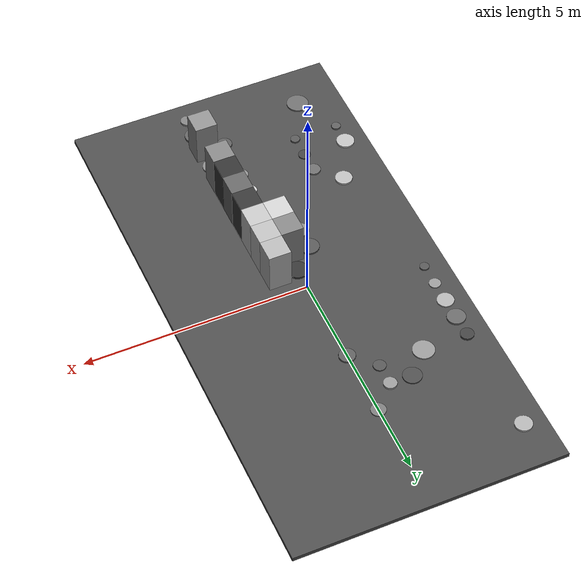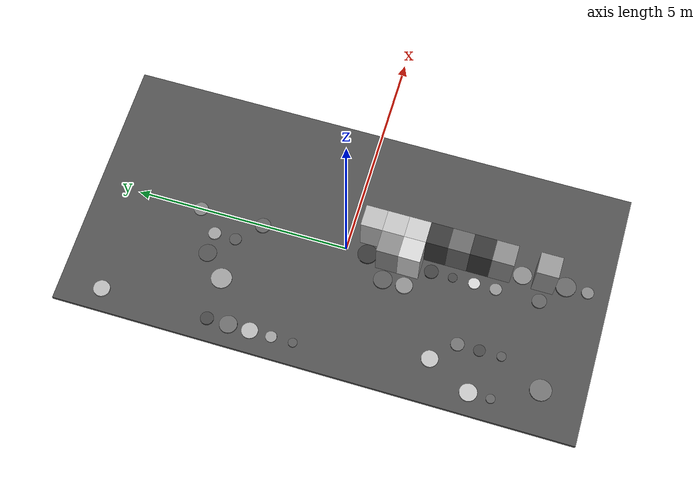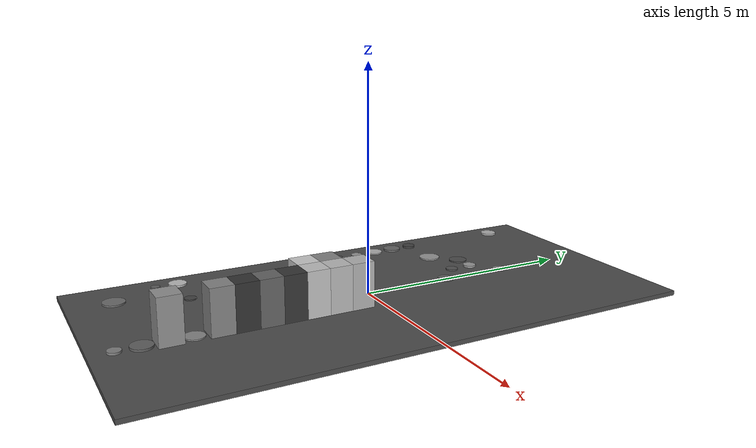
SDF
<sdf version="1.7">
 <world name="default">
  <model name="ground_plane">
   <static>true</static>
   <link name="link">
    <pose>0.0 0.0 -0.05 0 0 0</pose>
    <visual name="visual">
     <material>
      <ambient>0.297790706906946 0.297790706906946 0.297790706906946 1</ambient>
      <diffuse>0.297790706906946 0.297790706906946 0.297790706906946 1</diffuse>
     </material>
     <geometry><box><size>6.0 12.0 0.1</size></box></geometry>
    </visual>
    <collision name="collision">
     <geometry><box><size>6.0 12.0 0.1</size></box></geometry>
     <surface>
      <friction><ode><mu>100</mu><mu2>50.0</mu2><slip1>0.0</slip1><slip2>0.0</slip2></ode></friction>
      <contact><ode><kp>10000.0</kp><kd>100.0</kd></ode></contact>
     </surface>
    </collision>
   </link>
  </model>
  <model name="pn_pillar_0">
   <static>true</static>
   <link name="link">
    <pose>-2.5 -4.0 0.020492834980723545 0 0 0</pose>
    <visual name="visual">
     <material>
      <ambient>0.3650175910214716 0.3650175910214716 0.3650175910214716 1</ambient>
      <diffuse>0.3650175910214716 0.3650175910214716 0.3650175910214716 1</diffuse>
     </material>
     <geometry>
      <cylinder><radius>0.10375161328340005</radius><length>0.04098566996144709</length></cylinder>
     </geometry>
    </visual>
    <collision name="collision">
     <geometry>
      <cylinder><radius>0.10375161328340005</radius><length>0.04098566996144709</length></cylinder>
     </geometry>
     <surface>
      <friction><ode><mu>100</mu><mu2>50.0</mu2><slip1>0.0</slip1><slip2>0.0</slip2></ode></friction>
      <contact><ode><kp>10000.0</kp><kd>100.0</kd></ode></contact>
     </surface>
    </collision>
   </link>
  </model>
  <model name="pn_pillar_1">
   <static>true</static>
   <link name="link">
    <pose>-2.5 -3.5 0.021705890177050158 0 0 0</pose>
    <visual name="visual">
     <material>
      <ambient>0.7353077406229074 0.7353077406229074 0.7353077406229074 1</ambient>
      <diffuse>0.7353077406229074 0.7353077406229074 0.7353077406229074 1</diffuse>
     </material>
     <geometry>
      <cylinder><radius>0.2015049231134367</radius><length>0.043411780354100316</length></cylinder>
     </geometry>
    </visual>
    <collision name="collision">
     <geometry>
      <cylinder><radius>0.2015049231134367</radius><length>0.043411780354100316</length></cylinder>
     </geometry>
     <surface>
      <friction><ode><mu>100</mu><mu2>50.0</mu2><slip1>0.0</slip1><slip2>0.0</slip2></ode></friction>
      <contact><ode><kp>10000.0</kp><kd>100.0</kd></ode></contact>
     </surface>
    </collision>
   </link>
  </model>
  <model name="pn_pillar_2">
   <static>true</static>
   <link name="link">
    <pose>-2.5 0.5 0.017774022746065883 0 0 0</pose>
    <visual name="visual">
     <material>
      <ambient>0.331182784882162 0.331182784882162 0.331182784882162 1</ambient>
      <diffuse>0.331182784882162 0.331182784882162 0.331182784882162 1</diffuse>
     </material>
     <geometry>
      <cylinder><radius>0.10446958291571055</radius><length>0.035548045492131766</length></cylinder>
     </geometry>
    </visual>
    <collision name="collision">
     <geometry>
      <cylinder><radius>0.10446958291571055</radius><length>0.035548045492131766</length></cylinder>
     </geometry>
     <surface>
      <friction><ode><mu>100</mu><mu2>50.0</mu2><slip1>0.0</slip1><slip2>0.0</slip2></ode></friction>
      <contact><ode><kp>10000.0</kp><kd>100.0</kd></ode></contact>
     </surface>
    </collision>
   </link>
  </model>
  <model name="pn_pillar_3">
   <static>true</static>
   <link name="link">
    <pose>-2.5 1.0 0.012831699621048296 0 0 0</pose>
    <visual name="visual">
     <material>
      <ambient>0.589930662667714 0.589930662667714 0.589930662667714 1</ambient>
      <diffuse>0.589930662667714 0.589930662667714 0.589930662667714 1</diffuse>
     </material>
     <geometry>
      <cylinder><radius>0.12982564760299728</radius><length>0.025663399242096593</length></cylinder>
     </geometry>
    </visual>
    <collision name="collision">
     <geometry>
      <cylinder><radius>0.12982564760299728</radius><length>0.025663399242096593</length></cylinder>
     </geometry>
     <surface>
      <friction><ode><mu>100</mu><mu2>50.0</mu2><slip1>0.0</slip1><slip2>0.0</slip2></ode></friction>
      <contact><ode><kp>10000.0</kp><kd>100.0</kd></ode></contact>
     </surface>
    </collision>
   </link>
  </model>
  <model name="pn_pillar_4">
   <static>true</static>
   <link name="link">
    <pose>-2.5 1.5 0.015255507775508709 0 0 0</pose>
    <visual name="visual">
     <material>
      <ambient>0.6856582740066961 0.6856582740066961 0.6856582740066961 1</ambient>
      <diffuse>0.6856582740066961 0.6856582740066961 0.6856582740066961 1</diffuse>
     </material>
     <geometry>
      <cylinder><radius>0.1883898525813863</radius><length>0.030511015551017418</length></cylinder>
     </geometry>
    </visual>
    <collision name="collision">
     <geometry>
      <cylinder><radius>0.1883898525813863</radius><length>0.030511015551017418</length></cylinder>
     </geometry>
     <surface>
      <friction><ode><mu>100</mu><mu2>50.0</mu2><slip1>0.0</slip1><slip2>0.0</slip2></ode></friction>
      <contact><ode><kp>10000.0</kp><kd>100.0</kd></ode></contact>
     </surface>
    </collision>
   </link>
  </model>
  <model name="pn_pillar_5">
   <static>true</static>
   <link name="link">
    <pose>-2.5 2.0 0.0225727406479101 0 0 0</pose>
    <visual name="visual">
     <material>
      <ambient>0.40415030991079515 0.40415030991079515 0.40415030991079515 1</ambient>
      <diffuse>0.40415030991079515 0.40415030991079515 0.40415030991079515 1</diffuse>
     </material>
     <geometry>
      <cylinder><radius>0.20472090924823405</radius><length>0.0451454812958202</length></cylinder>
     </geometry>
    </visual>
    <collision name="collision">
     <geometry>
      <cylinder><radius>0.20472090924823405</radius><length>0.0451454812958202</length></cylinder>
     </geometry>
     <surface>
      <friction><ode><mu>100</mu><mu2>50.0</mu2><slip1>0.0</slip1><slip2>0.0</slip2></ode></friction>
      <contact><ode><kp>10000.0</kp><kd>100.0</kd></ode></contact>
     </surface>
    </collision>
   </link>
  </model>
  <model name="pn_pillar_6">
   <static>true</static>
   <link name="link">
    <pose>-2.5 2.5 0.024465163402584766 0 0 0</pose>
    <visual name="visual">
     <material>
      <ambient>0.2556475060280888 0.2556475060280888 0.2556475060280888 1</ambient>
      <diffuse>0.2556475060280888 0.2556475060280888 0.2556475060280888 1</diffuse>
     </material>
     <geometry>
      <cylinder><radius>0.15048918176689402</radius><length>0.04893032680516953</length></cylinder>
     </geometry>
    </visual>
    <collision name="collision">
     <geometry>
      <cylinder><radius>0.15048918176689402</radius><length>0.04893032680516953</length></cylinder>
     </geometry>
     <surface>
      <friction><ode><mu>100</mu><mu2>50.0</mu2><slip1>0.0</slip1><slip2>0.0</slip2></ode></friction>
      <contact><ode><kp>10000.0</kp><kd>100.0</kd></ode></contact>
     </surface>
    </collision>
   </link>
  </model>
  <model name="pn_pillar_7">
   <static>true</static>
   <link name="link">
    <pose>-2.5 5.0 0.02309367957934325 0 0 0</pose>
    <visual name="visual">
     <material>
      <ambient>0.6842769639646282 0.6842769639646282 0.6842769639646282 1</ambient>
      <diffuse>0.6842769639646282 0.6842769639646282 0.6842769639646282 1</diffuse>
     </material>
     <geometry>
      <cylinder><radius>0.19055890470503367</radius><length>0.0461873591586865</length></cylinder>
     </geometry>
    </visual>
    <collision name="collision">
     <geometry>
      <cylinder><radius>0.19055890470503367</radius><length>0.0461873591586865</length></cylinder>
     </geometry>
     <surface>
      <friction><ode><mu>100</mu><mu2>50.0</mu2><slip1>0.0</slip1><slip2>0.0</slip2></ode></friction>
      <contact><ode><kp>10000.0</kp><kd>100.0</kd></ode></contact>
     </surface>
    </collision>
   </link>
  </model>
  <model name="pn_pillar_8">
   <static>true</static>
   <link name="link">
    <pose>-2.0 -5.0 0.01920285114318376 0 0 0</pose>
    <visual name="visual">
     <material>
      <ambient>0.42712062632501213 0.42712062632501213 0.42712062632501213 1</ambient>
      <diffuse>0.42712062632501213 0.42712062632501213 0.42712062632501213 1</diffuse>
     </material>
     <geometry>
      <cylinder><radius>0.2459673645969056</radius><length>0.03840570228636752</length></cylinder>
     </geometry>
    </visual>
    <collision name="collision">
     <geometry>
      <cylinder><radius>0.2459673645969056</radius><length>0.03840570228636752</length></cylinder>
     </geometry>
     <surface>
      <friction><ode><mu>100</mu><mu2>50.0</mu2><slip1>0.0</slip1><slip2>0.0</slip2></ode></friction>
      <contact><ode><kp>10000.0</kp><kd>100.0</kd></ode></contact>
     </surface>
    </collision>
   </link>
  </model>
  <model name="pn_pillar_9">
   <static>true</static>
   <link name="link">
    <pose>-2.0 -2.5 0.022867558303162436 0 0 0</pose>
    <visual name="visual">
     <material>
      <ambient>0.7170241401864663 0.7170241401864663 0.7170241401864663 1</ambient>
      <diffuse>0.7170241401864663 0.7170241401864663 0.7170241401864663 1</diffuse>
     </material>
     <geometry>
      <cylinder><radius>0.19277796285463691</radius><length>0.04573511660632487</length></cylinder>
     </geometry>
    </visual>
    <collision name="collision">
     <geometry>
      <cylinder><radius>0.19277796285463691</radius><length>0.04573511660632487</length></cylinder>
     </geometry>
     <surface>
      <friction><ode><mu>100</mu><mu2>50.0</mu2><slip1>0.0</slip1><slip2>0.0</slip2></ode></friction>
      <contact><ode><kp>10000.0</kp><kd>100.0</kd></ode></contact>
     </surface>
    </collision>
   </link>
  </model>
  <model name="pn_pillar_10">
   <static>true</static>
   <link name="link">
    <pose>-1.5 -4.0 0.021307147952686546 0 0 0</pose>
    <visual name="visual">
     <material>
      <ambient>0.3367389653909282 0.3367389653909282 0.3367389653909282 1</ambient>
      <diffuse>0.3367389653909282 0.3367389653909282 0.3367389653909282 1</diffuse>
     </material>
     <geometry>
      <cylinder><radius>0.10687365754834934</radius><length>0.04261429590537309</length></cylinder>
     </geometry>
    </visual>
    <collision name="collision">
     <geometry>
      <cylinder><radius>0.10687365754834934</radius><length>0.04261429590537309</length></cylinder>
     </geometry>
     <surface>
      <friction><ode><mu>100</mu><mu2>50.0</mu2><slip1>0.0</slip1><slip2>0.0</slip2></ode></friction>
      <contact><ode><kp>10000.0</kp><kd>100.0</kd></ode></contact>
     </surface>
    </collision>
   </link>
  </model>
  <model name="pn_pillar_11">
   <static>true</static>
   <link name="link">
    <pose>-1.5 -3.5 0.013497399711545344 0 0 0</pose>
    <visual name="visual">
     <material>
      <ambient>0.2606008576458375 0.2606008576458375 0.2606008576458375 1</ambient>
      <diffuse>0.2606008576458375 0.2606008576458375 0.2606008576458375 1</diffuse>
     </material>
     <geometry>
      <cylinder><radius>0.13491863295415452</radius><length>0.026994799423090687</length></cylinder>
     </geometry>
    </visual>
    <collision name="collision">
     <geometry>
      <cylinder><radius>0.13491863295415452</radius><length>0.026994799423090687</length></cylinder>
     </geometry>
     <surface>
      <friction><ode><mu>100</mu><mu2>50.0</mu2><slip1>0.0</slip1><slip2>0.0</slip2></ode></friction>
      <contact><ode><kp>10000.0</kp><kd>100.0</kd></ode></contact>
     </surface>
    </collision>
   </link>
  </model>
  <model name="pn_pillar_12">
   <static>true</static>
   <link name="link">
    <pose>-1.5 -3.0 0.020446055553305004 0 0 0</pose>
    <visual name="visual">
     <material>
      <ambient>0.42210858027012965 0.42210858027012965 0.42210858027012965 1</ambient>
      <diffuse>0.42210858027012965 0.42210858027012965 0.42210858027012965 1</diffuse>
     </material>
     <geometry>
      <cylinder><radius>0.15472482684551264</radius><length>0.04089211110661001</length></cylinder>
     </geometry>
    </visual>
    <collision name="collision">
     <geometry>
      <cylinder><radius>0.15472482684551264</radius><length>0.04089211110661001</length></cylinder>
     </geometry>
     <surface>
      <friction><ode><mu>100</mu><mu2>50.0</mu2><slip1>0.0</slip1><slip2>0.0</slip2></ode></friction>
      <contact><ode><kp>10000.0</kp><kd>100.0</kd></ode></contact>
     </surface>
    </collision>
   </link>
  </model>
  <model name="pn_pillar_13">
   <static>true</static>
   <link name="link">
    <pose>-1.5 2.5 0.01583722277561392 0 0 0</pose>
    <visual name="visual">
     <material>
      <ambient>0.5888212311479561 0.5888212311479561 0.5888212311479561 1</ambient>
      <diffuse>0.5888212311479561 0.5888212311479561 0.5888212311479561 1</diffuse>
     </material>
     <geometry>
      <cylinder><radius>0.2404981881568741</radius><length>0.03167444555122784</length></cylinder>
     </geometry>
    </visual>
    <collision name="collision">
     <geometry>
      <cylinder><radius>0.2404981881568741</radius><length>0.03167444555122784</length></cylinder>
     </geometry>
     <surface>
      <friction><ode><mu>100</mu><mu2>50.0</mu2><slip1>0.0</slip1><slip2>0.0</slip2></ode></friction>
      <contact><ode><kp>10000.0</kp><kd>100.0</kd></ode></contact>
     </surface>
    </collision>
   </link>
  </model>
  <model name="pn_pillar_14">
   <static>true</static>
   <link name="link">
    <pose>-1.0 3.0 0.014639233102476213 0 0 0</pose>
    <visual name="visual">
     <material>
      <ambient>0.29804149625715703 0.29804149625715703 0.29804149625715703 1</ambient>
      <diffuse>0.29804149625715703 0.29804149625715703 0.29804149625715703 1</diffuse>
     </material>
     <geometry>
      <cylinder><radius>0.2093690196925524</radius><length>0.029278466204952426</length></cylinder>
     </geometry>
    </visual>
    <collision name="collision">
     <geometry>
      <cylinder><radius>0.2093690196925524</radius><length>0.029278466204952426</length></cylinder>
     </geometry>
     <surface>
      <friction><ode><mu>100</mu><mu2>50.0</mu2><slip1>0.0</slip1><slip2>0.0</slip2></ode></friction>
      <contact><ode><kp>10000.0</kp><kd>100.0</kd></ode></contact>
     </surface>
    </collision>
   </link>
  </model>
  <model name="pn_pillar_15">
   <static>true</static>
   <link name="link">
    <pose>-0.5 -1.5 0.02486904188295744 0 0 0</pose>
    <visual name="visual">
     <material>
      <ambient>0.5341698462647878 0.5341698462647878 0.5341698462647878 1</ambient>
      <diffuse>0.5341698462647878 0.5341698462647878 0.5341698462647878 1</diffuse>
     </material>
     <geometry>
      <cylinder><radius>0.19599996397811392</radius><length>0.04973808376591488</length></cylinder>
     </geometry>
    </visual>
    <collision name="collision">
     <geometry>
      <cylinder><radius>0.19599996397811392</radius><length>0.04973808376591488</length></cylinder>
     </geometry>
     <surface>
      <friction><ode><mu>100</mu><mu2>50.0</mu2><slip1>0.0</slip1><slip2>0.0</slip2></ode></friction>
      <contact><ode><kp>10000.0</kp><kd>100.0</kd></ode></contact>
     </surface>
    </collision>
   </link>
  </model>
  <model name="pn_pillar_16">
   <static>true</static>
   <link name="link">
    <pose>-0.5 -1.0 0.02303564900237262 0 0 0</pose>
    <visual name="visual">
     <material>
      <ambient>0.33742884317846267 0.33742884317846267 0.33742884317846267 1</ambient>
      <diffuse>0.33742884317846267 0.33742884317846267 0.33742884317846267 1</diffuse>
     </material>
     <geometry>
      <cylinder><radius>0.21639998673193672</radius><length>0.04607129800474524</length></cylinder>
     </geometry>
    </visual>
    <collision name="collision">
     <geometry>
      <cylinder><radius>0.21639998673193672</radius><length>0.04607129800474524</length></cylinder>
     </geometry>
     <surface>
      <friction><ode><mu>100</mu><mu2>50.0</mu2><slip1>0.0</slip1><slip2>0.0</slip2></ode></friction>
      <contact><ode><kp>10000.0</kp><kd>100.0</kd></ode></contact>
     </surface>
    </collision>
   </link>
  </model>
  <model name="pn_pillar_17">
   <static>true</static>
   <link name="link">
    <pose>-0.5 2.5 0.016443163100738525 0 0 0</pose>
    <visual name="visual">
     <material>
      <ambient>0.32658970615179594 0.32658970615179594 0.32658970615179594 1</ambient>
      <diffuse>0.32658970615179594 0.32658970615179594 0.32658970615179594 1</diffuse>
     </material>
     <geometry>
      <cylinder><radius>0.14016113139635542</radius><length>0.03288632620147705</length></cylinder>
     </geometry>
    </visual>
    <collision name="collision">
     <geometry>
      <cylinder><radius>0.14016113139635542</radius><length>0.03288632620147705</length></cylinder>
     </geometry>
     <surface>
      <friction><ode><mu>100</mu><mu2>50.0</mu2><slip1>0.0</slip1><slip2>0.0</slip2></ode></friction>
      <contact><ode><kp>10000.0</kp><kd>100.0</kd></ode></contact>
     </surface>
    </collision>
   </link>
  </model>
  <model name="pn_pillar_18">
   <static>true</static>
   <link name="link">
    <pose>-0.5 3.0 0.02345459533090836 0 0 0</pose>
    <visual name="visual">
     <material>
      <ambient>0.5932631991769282 0.5932631991769282 0.5932631991769282 1</ambient>
      <diffuse>0.5932631991769282 0.5932631991769282 0.5932631991769282 1</diffuse>
     </material>
     <geometry>
      <cylinder><radius>0.1472016821197717</radius><length>0.04690919066181672</length></cylinder>
     </geometry>
    </visual>
    <collision name="collision">
     <geometry>
      <cylinder><radius>0.1472016821197717</radius><length>0.04690919066181672</length></cylinder>
     </geometry>
     <surface>
      <friction><ode><mu>100</mu><mu2>50.0</mu2><slip1>0.0</slip1><slip2>0.0</slip2></ode></friction>
      <contact><ode><kp>10000.0</kp><kd>100.0</kd></ode></contact>
     </surface>
    </collision>
   </link>
  </model>
  <model name="pn_pillar_19">
   <static>true</static>
   <link name="link">
    <pose>0.0 -4.5 0.023931844871756796 0 0 0</pose>
    <visual name="visual">
     <material>
      <ambient>0.3589280998988315 0.3589280998988315 0.3589280998988315 1</ambient>
      <diffuse>0.3589280998988315 0.3589280998988315 0.3589280998988315 1</diffuse>
     </material>
     <geometry>
      <cylinder><radius>0.16882777788810982</radius><length>0.04786368974351359</length></cylinder>
     </geometry>
    </visual>
    <collision name="collision">
     <geometry>
      <cylinder><radius>0.16882777788810982</radius><length>0.04786368974351359</length></cylinder>
     </geometry>
     <surface>
      <friction><ode><mu>100</mu><mu2>50.0</mu2><slip1>0.0</slip1><slip2>0.0</slip2></ode></friction>
      <contact><ode><kp>10000.0</kp><kd>100.0</kd></ode></contact>
     </surface>
    </collision>
   </link>
  </model>
  <model name="pn_pillar_20">
   <static>true</static>
   <link name="link">
    <pose>0.0 -3.5 0.019517101677039385 0 0 0</pose>
    <visual name="visual">
     <material>
      <ambient>0.5507515941341243 0.5507515941341243 0.5507515941341243 1</ambient>
      <diffuse>0.5507515941341243 0.5507515941341243 0.5507515941341243 1</diffuse>
     </material>
     <geometry>
      <cylinder><radius>0.1394112412784403</radius><length>0.03903420335407877</length></cylinder>
     </geometry>
    </visual>
    <collision name="collision">
     <geometry>
      <cylinder><radius>0.1394112412784403</radius><length>0.03903420335407877</length></cylinder>
     </geometry>
     <surface>
      <friction><ode><mu>100</mu><mu2>50.0</mu2><slip1>0.0</slip1><slip2>0.0</slip2></ode></friction>
      <contact><ode><kp>10000.0</kp><kd>100.0</kd></ode></contact>
     </surface>
    </collision>
   </link>
  </model>
  <model name="pn_pillar_21">
   <static>true</static>
   <link name="link">
    <pose>0.0 -3.0 0.017492506314254967 0 0 0</pose>
    <visual name="visual">
     <material>
      <ambient>0.7985225638970663 0.7985225638970663 0.7985225638970663 1</ambient>
      <diffuse>0.7985225638970663 0.7985225638970663 0.7985225638970663 1</diffuse>
     </material>
     <geometry>
      <cylinder><radius>0.13289811387359252</radius><length>0.034985012628509934</length></cylinder>
     </geometry>
    </visual>
    <collision name="collision">
     <geometry>
      <cylinder><radius>0.13289811387359252</radius><length>0.034985012628509934</length></cylinder>
     </geometry>
     <surface>
      <friction><ode><mu>100</mu><mu2>50.0</mu2><slip1>0.0</slip1><slip2>0.0</slip2></ode></friction>
      <contact><ode><kp>10000.0</kp><kd>100.0</kd></ode></contact>
     </surface>
    </collision>
   </link>
  </model>
  <model name="pn_pillar_22">
   <static>true</static>
   <link name="link">
    <pose>0.0 -2.5 0.013636367652172424 0 0 0</pose>
    <visual name="visual">
     <material>
      <ambient>0.2657894782103955 0.2657894782103955 0.2657894782103955 1</ambient>
      <diffuse>0.2657894782103955 0.2657894782103955 0.2657894782103955 1</diffuse>
     </material>
     <geometry>
      <cylinder><radius>0.10706745631371019</radius><length>0.027272735304344847</length></cylinder>
     </geometry>
    </visual>
    <collision name="collision">
     <geometry>
      <cylinder><radius>0.10706745631371019</radius><length>0.027272735304344847</length></cylinder>
     </geometry>
     <surface>
      <friction><ode><mu>100</mu><mu2>50.0</mu2><slip1>0.0</slip1><slip2>0.0</slip2></ode></friction>
      <contact><ode><kp>10000.0</kp><kd>100.0</kd></ode></contact>
     </surface>
    </collision>
   </link>
  </model>
  <model name="pn_pillar_23">
   <static>true</static>
   <link name="link">
    <pose>0.0 -2.0 0.022400992054537053 0 0 0</pose>
    <visual name="visual">
     <material>
      <ambient>0.2381166236911743 0.2381166236911743 0.2381166236911743 1</ambient>
      <diffuse>0.2381166236911743 0.2381166236911743 0.2381166236911743 1</diffuse>
     </material>
     <geometry>
      <cylinder><radius>0.1633239950199526</radius><length>0.04480198410907411</length></cylinder>
     </geometry>
    </visual>
    <collision name="collision">
     <geometry>
      <cylinder><radius>0.1633239950199526</radius><length>0.04480198410907411</length></cylinder>
     </geometry>
     <surface>
      <friction><ode><mu>100</mu><mu2>50.0</mu2><slip1>0.0</slip1><slip2>0.0</slip2></ode></friction>
      <contact><ode><kp>10000.0</kp><kd>100.0</kd></ode></contact>
     </surface>
    </collision>
   </link>
  </model>
  <model name="pn_wall_24">
   <static>true</static>
   <link name="link">
    <pose>0.0 -1.5 0.5 0 0 0</pose>
    <visual name="visual">
     <material>
      <ambient>0.7976728281440582 0.7976728281440582 0.7976728281440582 1</ambient>
      <diffuse>0.7976728281440582 0.7976728281440582 0.7976728281440582 1</diffuse>
     </material>
     <geometry><box><size>0.5 0.5 1.0</size></box></geometry>
    </visual>
    <collision name="collision">
     <geometry><box><size>0.5 0.5 1.0</size></box></geometry>
     <surface>
      <friction><ode><mu>100</mu><mu2>50.0</mu2><slip1>0.0</slip1><slip2>0.0</slip2></ode></friction>
      <contact><ode><kp>10000.0</kp><kd>100.0</kd></ode></contact>
     </surface>
    </collision>
   </link>
  </model>
  <model name="pn_wall_25">
   <static>true</static>
   <link name="link">
    <pose>0.0 -1.0 0.5 0 0 0</pose>
    <visual name="visual">
     <material>
      <ambient>0.5174686070594823 0.5174686070594823 0.5174686070594823 1</ambient>
      <diffuse>0.5174686070594823 0.5174686070594823 0.5174686070594823 1</diffuse>
     </material>
     <geometry><box><size>0.5 0.5 1.0</size></box></geometry>
    </visual>
    <collision name="collision">
     <geometry><box><size>0.5 0.5 1.0</size></box></geometry>
     <surface>
      <friction><ode><mu>100</mu><mu2>50.0</mu2><slip1>0.0</slip1><slip2>0.0</slip2></ode></friction>
      <contact><ode><kp>10000.0</kp><kd>100.0</kd></ode></contact>
     </surface>
    </collision>
   </link>
  </model>
  <model name="pn_pillar_26">
   <static>true</static>
   <link name="link">
    <pose>0.0 -0.5 0.024638479720170227 0 0 0</pose>
    <visual name="visual">
     <material>
      <ambient>0.2068886131656918 0.2068886131656918 0.2068886131656918 1</ambient>
      <diffuse>0.2068886131656918 0.2068886131656918 0.2068886131656918 1</diffuse>
     </material>
     <geometry>
      <cylinder><radius>0.2291169553351747</radius><length>0.049276959440340454</length></cylinder>
     </geometry>
    </visual>
    <collision name="collision">
     <geometry>
      <cylinder><radius>0.2291169553351747</radius><length>0.049276959440340454</length></cylinder>
     </geometry>
     <surface>
      <friction><ode><mu>100</mu><mu2>50.0</mu2><slip1>0.0</slip1><slip2>0.0</slip2></ode></friction>
      <contact><ode><kp>10000.0</kp><kd>100.0</kd></ode></contact>
     </surface>
    </collision>
   </link>
  </model>
  <model name="pn_pillar_27">
   <static>true</static>
   <link name="link">
    <pose>0.0 2.0 0.021021379612832188 0 0 0</pose>
    <visual name="visual">
     <material>
      <ambient>0.3600951139715257 0.3600951139715257 0.3600951139715257 1</ambient>
      <diffuse>0.3600951139715257 0.3600951139715257 0.3600951139715257 1</diffuse>
     </material>
     <geometry>
      <cylinder><radius>0.1805455495613193</radius><length>0.042042759225664375</length></cylinder>
     </geometry>
    </visual>
    <collision name="collision">
     <geometry>
      <cylinder><radius>0.1805455495613193</radius><length>0.042042759225664375</length></cylinder>
     </geometry>
     <surface>
      <friction><ode><mu>100</mu><mu2>50.0</mu2><slip1>0.0</slip1><slip2>0.0</slip2></ode></friction>
      <contact><ode><kp>10000.0</kp><kd>100.0</kd></ode></contact>
     </surface>
    </collision>
   </link>
  </model>
  <model name="pn_pillar_28">
   <static>true</static>
   <link name="link">
    <pose>0.0 3.5 0.013894402169948456 0 0 0</pose>
    <visual name="visual">
     <material>
      <ambient>0.47223422379752394 0.47223422379752394 0.47223422379752394 1</ambient>
      <diffuse>0.47223422379752394 0.47223422379752394 0.47223422379752394 1</diffuse>
     </material>
     <geometry>
      <cylinder><radius>0.16521478760036573</radius><length>0.027788804339896913</length></cylinder>
     </geometry>
    </visual>
    <collision name="collision">
     <geometry>
      <cylinder><radius>0.16521478760036573</radius><length>0.027788804339896913</length></cylinder>
     </geometry>
     <surface>
      <friction><ode><mu>100</mu><mu2>50.0</mu2><slip1>0.0</slip1><slip2>0.0</slip2></ode></friction>
      <contact><ode><kp>10000.0</kp><kd>100.0</kd></ode></contact>
     </surface>
    </collision>
   </link>
  </model>
  <model name="pn_pillar_29">
   <static>true</static>
   <link name="link">
    <pose>0.5 -5.5 0.02344816175472743 0 0 0</pose>
    <visual name="visual">
     <material>
      <ambient>0.500351667830179 0.500351667830179 0.500351667830179 1</ambient>
      <diffuse>0.500351667830179 0.500351667830179 0.500351667830179 1</diffuse>
     </material>
     <geometry>
      <cylinder><radius>0.1395083576126636</radius><length>0.04689632350945486</length></cylinder>
     </geometry>
    </visual>
    <collision name="collision">
     <geometry>
      <cylinder><radius>0.1395083576126636</radius><length>0.04689632350945486</length></cylinder>
     </geometry>
     <surface>
      <friction><ode><mu>100</mu><mu2>50.0</mu2><slip1>0.0</slip1><slip2>0.0</slip2></ode></friction>
      <contact><ode><kp>10000.0</kp><kd>100.0</kd></ode></contact>
     </surface>
    </collision>
   </link>
  </model>
  <model name="pn_pillar_30">
   <static>true</static>
   <link name="link">
    <pose>0.5 -5.0 0.02390784799181026 0 0 0</pose>
    <visual name="visual">
     <material>
      <ambient>0.3790668748691798 0.3790668748691798 0.3790668748691798 1</ambient>
      <diffuse>0.3790668748691798 0.3790668748691798 0.3790668748691798 1</diffuse>
     </material>
     <geometry>
      <cylinder><radius>0.23057778547551502</radius><length>0.04781569598362052</length></cylinder>
     </geometry>
    </visual>
    <collision name="collision">
     <geometry>
      <cylinder><radius>0.23057778547551502</radius><length>0.04781569598362052</length></cylinder>
     </geometry>
     <surface>
      <friction><ode><mu>100</mu><mu2>50.0</mu2><slip1>0.0</slip1><slip2>0.0</slip2></ode></friction>
      <contact><ode><kp>10000.0</kp><kd>100.0</kd></ode></contact>
     </surface>
    </collision>
   </link>
  </model>
  <model name="pn_wall_31">
   <static>true</static>
   <link name="link">
    <pose>0.5 -4.5 0.5 0 0 0</pose>
    <visual name="visual">
     <material>
      <ambient>0.5653821268629035 0.5653821268629035 0.5653821268629035 1</ambient>
      <diffuse>0.5653821268629035 0.5653821268629035 0.5653821268629035 1</diffuse>
     </material>
     <geometry><box><size>0.5 0.5 1.0</size></box></geometry>
    </visual>
    <collision name="collision">
     <geometry><box><size>0.5 0.5 1.0</size></box></geometry>
     <surface>
      <friction><ode><mu>100</mu><mu2>50.0</mu2><slip1>0.0</slip1><slip2>0.0</slip2></ode></friction>
      <contact><ode><kp>10000.0</kp><kd>100.0</kd></ode></contact>
     </surface>
    </collision>
   </link>
  </model>
  <model name="pn_pillar_32">
   <static>true</static>
   <link name="link">
    <pose>0.5 -4.0 0.014410490856870435 0 0 0</pose>
    <visual name="visual">
     <material>
      <ambient>0.5236274180717755 0.5236274180717755 0.5236274180717755 1</ambient>
      <diffuse>0.5236274180717755 0.5236274180717755 0.5236274180717755 1</diffuse>
     </material>
     <geometry>
      <cylinder><radius>0.2143766200112727</radius><length>0.02882098171374087</length></cylinder>
     </geometry>
    </visual>
    <collision name="collision">
     <geometry>
      <cylinder><radius>0.2143766200112727</radius><length>0.02882098171374087</length></cylinder>
     </geometry>
     <surface>
      <friction><ode><mu>100</mu><mu2>50.0</mu2><slip1>0.0</slip1><slip2>0.0</slip2></ode></friction>
      <contact><ode><kp>10000.0</kp><kd>100.0</kd></ode></contact>
     </surface>
    </collision>
   </link>
  </model>
  <model name="pn_wall_33">
   <static>true</static>
   <link name="link">
    <pose>0.5 -3.5 0.5 0 0 0</pose>
    <visual name="visual">
     <material>
      <ambient>0.5182122033171066 0.5182122033171066 0.5182122033171066 1</ambient>
      <diffuse>0.5182122033171066 0.5182122033171066 0.5182122033171066 1</diffuse>
     </material>
     <geometry><box><size>0.5 0.5 1.0</size></box></geometry>
    </visual>
    <collision name="collision">
     <geometry><box><size>0.5 0.5 1.0</size></box></geometry>
     <surface>
      <friction><ode><mu>100</mu><mu2>50.0</mu2><slip1>0.0</slip1><slip2>0.0</slip2></ode></friction>
      <contact><ode><kp>10000.0</kp><kd>100.0</kd></ode></contact>
     </surface>
    </collision>
   </link>
  </model>
  <model name="pn_wall_34">
   <static>true</static>
   <link name="link">
    <pose>0.5 -3.0 0.5 0 0 0</pose>
    <visual name="visual">
     <material>
      <ambient>0.20034313767676612 0.20034313767676612 0.20034313767676612 1</ambient>
      <diffuse>0.20034313767676612 0.20034313767676612 0.20034313767676612 1</diffuse>
     </material>
     <geometry><box><size>0.5 0.5 1.0</size></box></geometry>
    </visual>
    <collision name="collision">
     <geometry><box><size>0.5 0.5 1.0</size></box></geometry>
     <surface>
      <friction><ode><mu>100</mu><mu2>50.0</mu2><slip1>0.0</slip1><slip2>0.0</slip2></ode></friction>
      <contact><ode><kp>10000.0</kp><kd>100.0</kd></ode></contact>
     </surface>
    </collision>
   </link>
  </model>
  <model name="pn_wall_35">
   <static>true</static>
   <link name="link">
    <pose>0.5 -2.5 0.5 0 0 0</pose>
    <visual name="visual">
     <material>
      <ambient>0.3944936342028039 0.3944936342028039 0.3944936342028039 1</ambient>
      <diffuse>0.3944936342028039 0.3944936342028039 0.3944936342028039 1</diffuse>
     </material>
     <geometry><box><size>0.5 0.5 1.0</size></box></geometry>
    </visual>
    <collision name="collision">
     <geometry><box><size>0.5 0.5 1.0</size></box></geometry>
     <surface>
      <friction><ode><mu>100</mu><mu2>50.0</mu2><slip1>0.0</slip1><slip2>0.0</slip2></ode></friction>
      <contact><ode><kp>10000.0</kp><kd>100.0</kd></ode></contact>
     </surface>
    </collision>
   </link>
  </model>
  <model name="pn_wall_36">
   <static>true</static>
   <link name="link">
    <pose>0.5 -2.0 0.5 0 0 0</pose>
    <visual name="visual">
     <material>
      <ambient>0.21168604543149938 0.21168604543149938 0.21168604543149938 1</ambient>
      <diffuse>0.21168604543149938 0.21168604543149938 0.21168604543149938 1</diffuse>
     </material>
     <geometry><box><size>0.5 0.5 1.0</size></box></geometry>
    </visual>
    <collision name="collision">
     <geometry><box><size>0.5 0.5 1.0</size></box></geometry>
     <surface>
      <friction><ode><mu>100</mu><mu2>50.0</mu2><slip1>0.0</slip1><slip2>0.0</slip2></ode></friction>
      <contact><ode><kp>10000.0</kp><kd>100.0</kd></ode></contact>
     </surface>
    </collision>
   </link>
  </model>
  <model name="pn_wall_37">
   <static>true</static>
   <link name="link">
    <pose>0.5 -1.5 0.5 0 0 0</pose>
    <visual name="visual">
     <material>
      <ambient>0.7574591697587703 0.7574591697587703 0.7574591697587703 1</ambient>
      <diffuse>0.7574591697587703 0.7574591697587703 0.7574591697587703 1</diffuse>
     </material>
     <geometry><box><size>0.5 0.5 1.0</size></box></geometry>
    </visual>
    <collision name="collision">
     <geometry><box><size>0.5 0.5 1.0</size></box></geometry>
     <surface>
      <friction><ode><mu>100</mu><mu2>50.0</mu2><slip1>0.0</slip1><slip2>0.0</slip2></ode></friction>
      <contact><ode><kp>10000.0</kp><kd>100.0</kd></ode></contact>
     </surface>
    </collision>
   </link>
  </model>
  <model name="pn_wall_38">
   <static>true</static>
   <link name="link">
    <pose>0.5 -1.0 0.5 0 0 0</pose>
    <visual name="visual">
     <material>
      <ambient>0.7272331266939107 0.7272331266939107 0.7272331266939107 1</ambient>
      <diffuse>0.7272331266939107 0.7272331266939107 0.7272331266939107 1</diffuse>
     </material>
     <geometry><box><size>0.5 0.5 1.0</size></box></geometry>
    </visual>
    <collision name="collision">
     <geometry><box><size>0.5 0.5 1.0</size></box></geometry>
     <surface>
      <friction><ode><mu>100</mu><mu2>50.0</mu2><slip1>0.0</slip1><slip2>0.0</slip2></ode></friction>
      <contact><ode><kp>10000.0</kp><kd>100.0</kd></ode></contact>
     </surface>
    </collision>
   </link>
  </model>
  <model name="pn_wall_39">
   <static>true</static>
   <link name="link">
    <pose>0.5 -0.5 0.5 0 0 0</pose>
    <visual name="visual">
     <material>
      <ambient>0.6989993176167077 0.6989993176167077 0.6989993176167077 1</ambient>
      <diffuse>0.6989993176167077 0.6989993176167077 0.6989993176167077 1</diffuse>
     </material>
     <geometry><box><size>0.5 0.5 1.0</size></box></geometry>
    </visual>
    <collision name="collision">
     <geometry><box><size>0.5 0.5 1.0</size></box></geometry>
     <surface>
      <friction><ode><mu>100</mu><mu2>50.0</mu2><slip1>0.0</slip1><slip2>0.0</slip2></ode></friction>
      <contact><ode><kp>10000.0</kp><kd>100.0</kd></ode></contact>
     </surface>
    </collision>
   </link>
  </model>
 </world>
</sdf>
